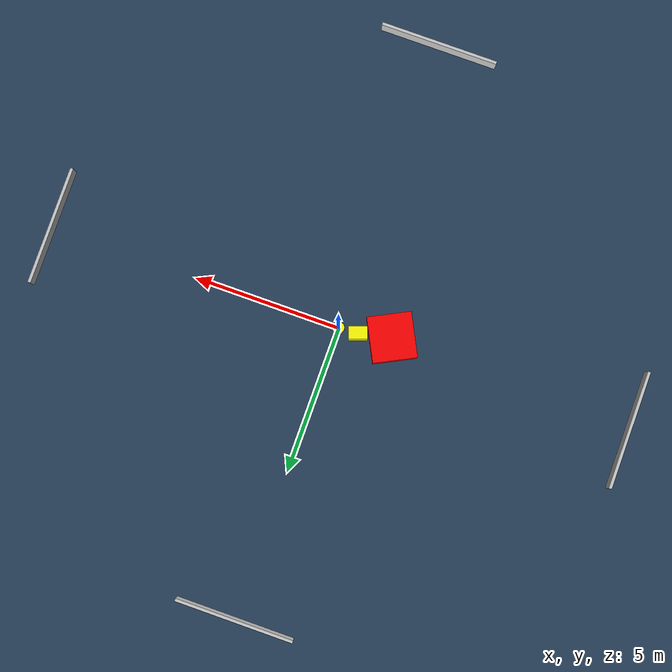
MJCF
<?xml version="1.0" ?>
<mujoco model="generated_environment">
  <option timestep="0.01" integrator="RK4" cone="elliptic"/>
  <default>
    <geom density="1"/>
  </default>
  <asset>
    <texture builtin="gradient" height="3072" name="skybox" rgb1="0.3 0.5 0.7" rgb2="0 0 0" type="skybox" width="512"/>
    <texture builtin="checker" height="300" name="groundplane" rgb1="0.2 0.3 0.4" rgb2="0.1 0.2 0.3" type="2d" width="300"/>
    <material name="groundplane" reflectance="0.2" texrepeat="5 5" texture="groundplane"/>
  </asset>
  <worldbody>
    <light dir="0 0 -1" directional="true" pos="0 0 1.5"/>
    <geom condim="3" friction="0.5 0.005 0.001" material="groundplane" name="floor" pos="0 0 0" size="0 0 0.05" type="plane"/>
    <body name="walls">
      <geom name="wall_1" condim="4" pos="-10.0 0.0 0.3" rgba="0.800000011920929 0.800000011920929 0.800000011920929 1.0" size="0.05 2.0 0.3" type="box"/>
      <geom name="wall_2" condim="4" pos="10.0 0.0 0.3" rgba="0.800000011920929 0.800000011920929 0.800000011920929 1.0" size="0.05 2.0 0.3" type="box"/>
      <geom name="wall_3" condim="4" pos="0.0 -10.0 0.3" rgba="0.800000011920929 0.800000011920929 0.800000011920929 1.0" size="2.0 0.05 0.3" type="box"/>
      <geom name="wall_4" condim="4" pos="0.0 10.0 0.3" rgba="0.800000011920929 0.800000011920929 0.800000011920929 1.0" size="2.0 0.05 0.3" type="box"/>
    </body>
    <body name="robot">
      <joint name="joint_x" type="slide" pos="0 0 0" axis="1 0 0"/>
      <joint name="joint_y" type="slide" pos="0 0 0" axis="0 1 0"/>
      <geom name="robot" type="cylinder" pos="0.0 0.0 0.2" size="0.2 0.2 0.0" mass="5.0" friction="1.0 0.005 0.0001" condim="4" rgba="1.0 1.0 0.0 1.0"/>
    </body>
    <body name="obstacle_1_movable">
      <geom name="obstacle_1_movable" condim="4" pos="-0.6603733763936878 -0.04450306837758856 0.3" euler="0 0 109.55414392091288" friction="0.0 0.005 0.001" rgba="1.0 1.0 0.0 1.0" size="0.21638292179665697 0.30858578905749995 0.3" type="box" mass="0.1"/>
      <joint type="free"/>
    </body>
    <body name="obstacle_2_static">
      <geom name="obstacle_2_static" condim="4" pos="-1.7555544122121571 -0.27034209967800477 0.3" euler="0 0 296.8406248296673" friction="0.0 0.005 0.001" rgba="1.0 0.0 0.0 1.0" size="0.7604130493869741 0.7361157821388904 0.3" type="box"/>
    </body>
  </worldbody>
  <actuator>
    <motor name="actuator_x" joint="joint_x" gear="1" ctrlrange="-1 1"/>
    <motor name="actuator_y" joint="joint_y" gear="1" ctrlrange="-1 1"/>
  </actuator>
</mujoco>
